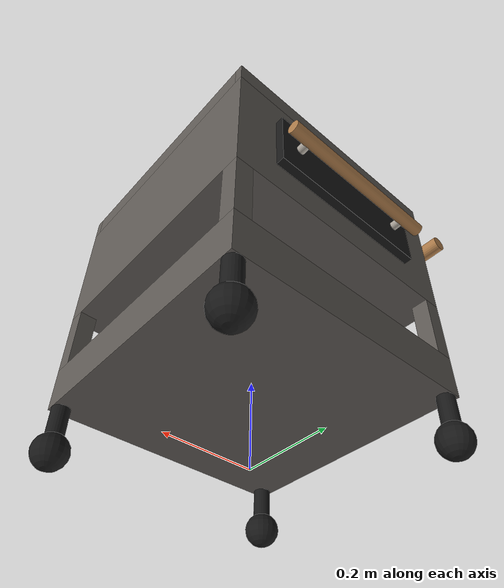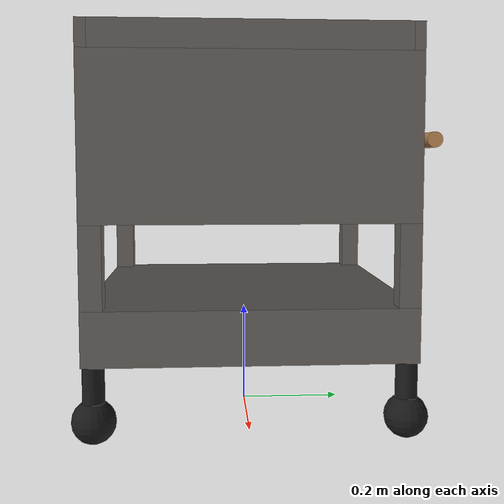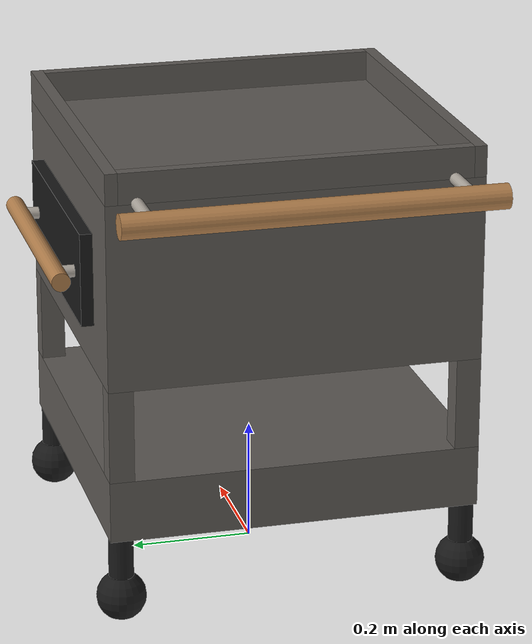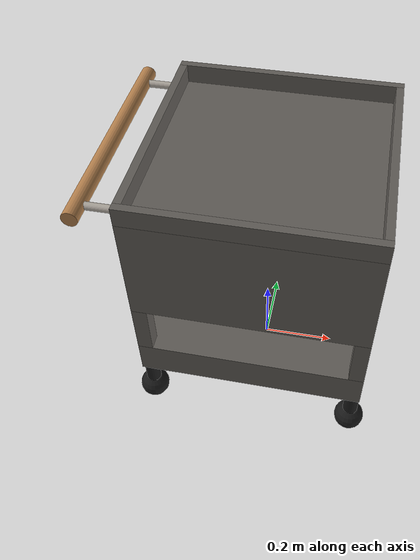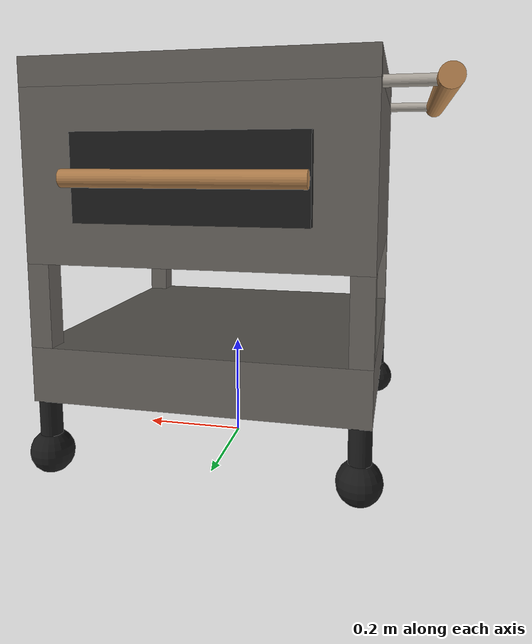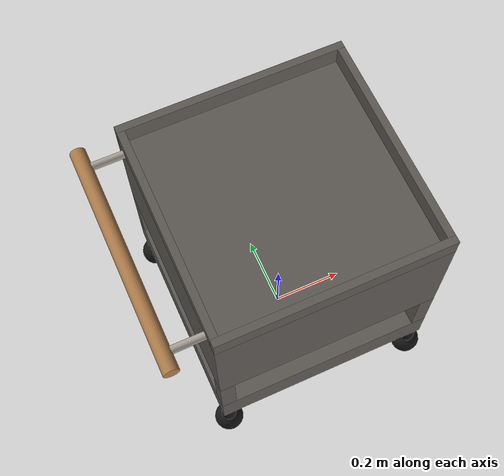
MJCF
<?xml version="1.0" encoding="utf-8"?>
<!-- from https://github.com/vikashplus/mj_envs/tree/master/mj_envs/hand_manipulation_suite/assets -->
<!-- Information about door can be found in this paper: https://arxiv.org/pdf/1709.10087.pdf -->

<mujoco model="microwave">
  <asset>
    <texture file="../textures/light-wood.png" type="cube" name="light-wood" />
    <texture file="../textures/dark-wood.png" type="cube" name="dark-wood" />
    <texture file="../textures/steel-brushed.png" type="cube" name="metal" />
    <material name="MatBlack" specular="0.2" shininess="0.3" rgba="0.1 0.1 0.1 1" />
    <material name="MatMetal" texture="metal" specular="1" shininess="0.3" rgba="0.5 0.5 0.5 1" />
    <material name="MatSteel" texture="metal" specular="1" shininess="0.3" rgba="0.9 0.9 0.9 1" />
    <material name="MatDarkWood" texture="dark-wood" texrepeat="3 3" specular="0.4" shininess="0.1" />
    <material name="MatLightWood" texture="light-wood" texrepeat="3 3" specular="0.4" shininess="0.1" />
  </asset>

  <worldbody>
    <body name="base">

    <body name="object">
      <inertial pos="0 0 0" mass="0.1" diaginertia="0.00005 0.00005 0.00001"/>
      <site name="origin" pos="0 0 0" rgba="0 0 0 0" size="0.005"/>

      <body name="body" pos="0 0 0">
        <geom pos="0 0.0 0.425" size="0.3 0.3 0.275" type="box"
          group="0" friction="1 1 1"
          rgba="0 0 0 0"
          />
        <geom pos="0 -0.29 0.725" size="0.3 0.01 0.025" type="box"
          group="0" friction="1 1 1"
          rgba="0 0 0 0"
          />
        <geom pos="0 0.29 0.725" size="0.3 0.01 0.025" type="box"
          group="0" friction="1 1 1"
          rgba="0 0 0 0"
          />
        <geom pos="-0.29 0.0 0.725" size="0.01 0.3 0.025" type="box"
          group="0" friction="1 1 1"
          rgba="0 0 0 0"
          />
        <geom pos=" 0.29 0.0 0.725" size="0.01 0.3 0.025" type="box"
          group="0" friction="1 1 1"
          rgba="0 0 0 0"
          />

        <geom pos="0 0.0 0.55" size="0.3 0.3 0.15" type="box"
          group="1" contype="0" conaffinity="0"
          material="MatMetal"
          />
        <geom pos="0 0.0 0.2" size="0.3 0.3 0.05" type="box"
          group="1" contype="0" conaffinity="0"
          material="MatMetal"
          />

        <geom fromto="-0.28 -0.28 0.25 -0.28 -0.28 0.4" size="0.02" type="box"
          group="1" contype="0" conaffinity="0"
          material="MatMetal"
          />
        <geom fromto="-0.28  0.28 0.25 -0.28  0.28 0.4" size="0.02" type="box"
          group="1" contype="0" conaffinity="0"
          material="MatMetal"
          />
        <geom fromto=" 0.28 -0.28 0.25  0.28 -0.28 0.4" size="0.02" type="box"
          group="1" contype="0" conaffinity="0"
          material="MatMetal"
          />
        <geom fromto=" 0.28  0.28 0.25  0.28  0.28 0.4" size="0.02" type="box"
          group="1" contype="0" conaffinity="0"
          material="MatMetal"
          />

        <geom pos="0 -0.29 0.725" size="0.3 0.01 0.025" type="box"
          group="1" contype="0" conaffinity="0"
          material="MatMetal"
          />
        <geom pos="0 0.29 0.725" size="0.3 0.01 0.025" type="box"
          group="1" contype="0" conaffinity="0"
          material="MatMetal"
          />
        <geom pos="-0.29 0.0 0.725" size="0.01 0.28 0.025" type="box"
          group="1" contype="0" conaffinity="0"
          material="MatMetal"
          />
        <geom pos=" 0.29 0.0 0.725" size="0.01 0.28 0.025" type="box"
          group="1" contype="0" conaffinity="0"
          material="MatMetal"
          />

        <geom fromto="-0.28 -0.28 0.05 -0.28 -0.28 0.15" size="0.02" type="cylinder"
          group="1" contype="0" conaffinity="0"
          material="MatBlack"
          />
        <geom fromto=" 0.28 -0.28 0.05  0.28 -0.28 0.15" size="0.02" type="cylinder"
          group="1" contype="0" conaffinity="0"
          material="MatBlack"
          />
        <geom fromto="-0.28  0.28 0.05 -0.28  0.28 0.15" size="0.02" type="cylinder"
          group="1" contype="0" conaffinity="0"
          material="MatBlack"
          />
        <geom fromto=" 0.28  0.28 0.05  0.28  0.28 0.15" size="0.02" type="cylinder"
          group="1" contype="0" conaffinity="0"
          material="MatBlack"
          />

        <geom pos="-0.28 -0.28 0.05" size="0.04" type="sphere"
          group="1" contype="0" conaffinity="0"
          material="MatBlack"
          />
        <geom pos="-0.28  0.28 0.05" size="0.04" type="sphere"
          group="1" contype="0" conaffinity="0"
          material="MatBlack"
          />
        <geom pos=" 0.28 -0.28 0.05" size="0.04" type="sphere"
          group="1" contype="0" conaffinity="0"
          material="MatBlack"
          />
        <geom pos=" 0.28  0.28 0.05" size="0.04" type="sphere"
          group="1" contype="0" conaffinity="0"
          material="MatBlack"
          />

      </body>

      <body name="drawer" pos="0 0.3 0.55" quat="-0.707107 0 0 0.707107">
        <geom pos="-0.01 0 0" size="0.01 0.2 0.075" type="box"
          group="1" contype="0" conaffinity="0"
          material="MatBlack"
          />

        <geom fromto=" 0   -0.15 0  -0.05 -0.15 0" size="0.01" type="cylinder"
          group="1" contype="0" conaffinity="0"
          material="MatSteel"
          />
        <geom fromto=" 0    0.15 0  -0.05  0.15 0" size="0.01" type="cylinder"
          group="1" contype="0" conaffinity="0"
          material="MatSteel"
          />
        <geom fromto="-0.05 -0.2  0  -0.05 0.2  0" size="0.015" type="cylinder"
          group="1" contype="0" conaffinity="0"
          material="MatDarkWood"
          />
      </body>

      <body name="handle" pos="-0.3 0 0.7">
        <geom fromto="-0.1 -0.3  0  -0.1  0.3  0" size="0.02" type="cylinder"
          group="0" friction="1 1 1"
          rgba="0 0 0 0"
          />

        <geom fromto=" 0   -0.25 0  -0.1 -0.25 0" size="0.01" type="cylinder"
          group="1" contype="0" conaffinity="0"
          material="MatSteel"
          />
        <geom fromto=" 0    0.25 0  -0.1  0.25 0" size="0.01" type="cylinder"
          group="1" contype="0" conaffinity="0"
          material="MatSteel"
          />
        <geom fromto="-0.1 -0.3  0  -0.1  0.3  0" size="0.02" type="cylinder"
          group="1" contype="0" conaffinity="0"
          material="MatLightWood"
          />
        <site name="handle" pos="-0.1 0 0" size="0.02" rgba="0 0 1 0" />
      </body>

    </body>
    <site name="bottom_site" pos="0 0 -0.0207" rgba="0 0 0 0" size="0.005"/>
    <site name="top_site" pos="0 0 0.007" rgba="0 0 0 0" size="0.005"/>
    <site name="horizontal_radius_site" pos="0 0 0" rgba="0 0 0 0" size="0.003"/>

    </body>

  </worldbody>
</mujoco>
